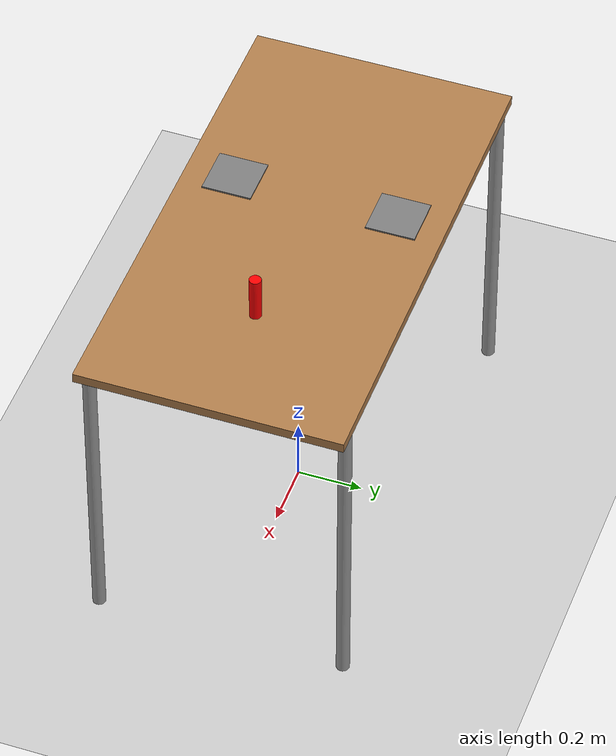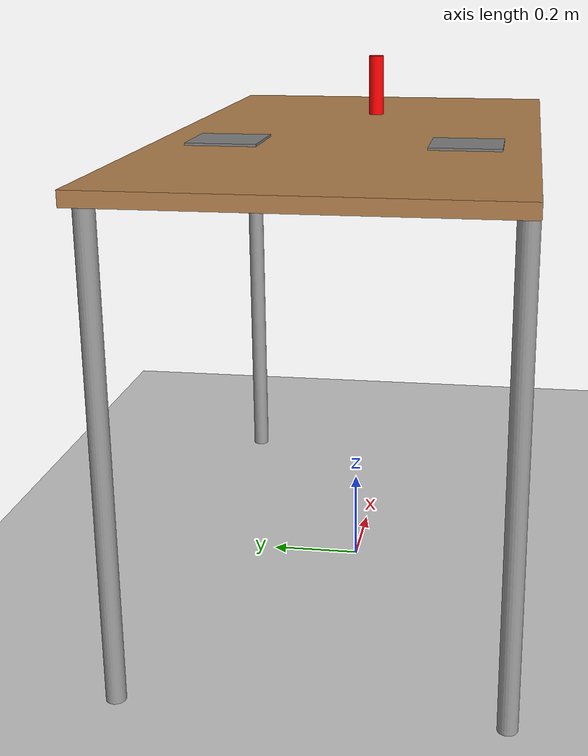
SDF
<?xml version="1.0" ?>
<sdf version="1.7">
  <world name="default">

    <gui fullscreen="0">
      <!-- Camera framed on this scene's workspace -->
      <plugin filename="MinimalScene" name="3D View">
        <gz-gui>
          <title>3D View</title>
          <property type="bool" key="showTitleBar">false</property>
          <property type="string" key="state">docked</property>
        </gz-gui>
        <engine>ogre2</engine>
        <scene>scene</scene>
        <ambient_light>0.4 0.4 0.4</ambient_light>
        <background_color>0.8 0.8 0.8</background_color>
        <camera_pose>-1.1 -1.1 1.7 0 0.36 0.68</camera_pose>
      </plugin>
      <plugin filename="EntityContextMenuPlugin" name="Entity context menu">
        <gz-gui>
          <property key="state" type="string">floating</property>
          <property key="width" type="double">5</property>
          <property key="height" type="double">5</property>
          <property key="showTitleBar" type="bool">false</property>
        </gz-gui>
      </plugin>
      <plugin filename="GzSceneManager" name="Scene Manager">
        <gz-gui>
          <property key="resizable" type="bool">false</property>
          <property key="width" type="double">5</property>
          <property key="height" type="double">5</property>
          <property key="state" type="string">floating</property>
          <property key="showTitleBar" type="bool">false</property>
        </gz-gui>
      </plugin>
      <plugin filename="InteractiveViewControl" name="Interactive view control">
        <gz-gui>
          <property key="resizable" type="bool">false</property>
          <property key="width" type="double">5</property>
          <property key="height" type="double">5</property>
          <property key="state" type="string">floating</property>
          <property key="showTitleBar" type="bool">false</property>
        </gz-gui>
      </plugin>
      <plugin filename="CameraTracking" name="Camera Tracking">
        <gz-gui>
          <property key="resizable" type="bool">false</property>
          <property key="width" type="double">5</property>
          <property key="height" type="double">5</property>
          <property key="state" type="string">floating</property>
          <property key="showTitleBar" type="bool">false</property>
        </gz-gui>
      </plugin>
      <plugin filename="MarkerManager" name="Marker manager">
        <gz-gui>
          <property key="resizable" type="bool">false</property>
          <property key="width" type="double">5</property>
          <property key="height" type="double">5</property>
          <property key="state" type="string">floating</property>
          <property key="showTitleBar" type="bool">false</property>
        </gz-gui>
      </plugin>
      <plugin filename="SelectEntities" name="Select Entities">
        <gz-gui>
          <property key="resizable" type="bool">false</property>
          <property key="width" type="double">5</property>
          <property key="height" type="double">5</property>
          <property key="state" type="string">floating</property>
          <property key="showTitleBar" type="bool">false</property>
        </gz-gui>
      </plugin>
      <plugin filename="Spawn" name="Spawn Entities">
        <gz-gui>
          <property key="resizable" type="bool">false</property>
          <property key="width" type="double">5</property>
          <property key="height" type="double">5</property>
          <property key="state" type="string">floating</property>
          <property key="showTitleBar" type="bool">false</property>
        </gz-gui>
      </plugin>
      <plugin filename="VisualizationCapabilities" name="Visualization Capabilities">
        <gz-gui>
          <property key="resizable" type="bool">false</property>
          <property key="width" type="double">5</property>
          <property key="height" type="double">5</property>
          <property key="state" type="string">floating</property>
          <property key="showTitleBar" type="bool">false</property>
        </gz-gui>
      </plugin>
      <plugin filename="WorldControl" name="World control">
        <gz-gui>
          <title>World control</title>
          <property type="bool" key="showTitleBar">false</property>
          <property type="bool" key="resizable">false</property>
          <property type="double" key="height">72</property>
          <property type="double" key="z">1</property>
          <property type="string" key="state">floating</property>
          <anchors target="3D View">
            <line own="left" target="left"/>
            <line own="bottom" target="bottom"/>
          </anchors>
        </gz-gui>
        <play_pause>true</play_pause>
        <step>true</step>
        <start_paused>true</start_paused>
        <use_event>true</use_event>
      </plugin>
      <plugin filename="WorldStats" name="World stats">
        <gz-gui>
          <title>World stats</title>
          <property type="bool" key="showTitleBar">false</property>
          <property type="bool" key="resizable">false</property>
          <property type="double" key="height">110</property>
          <property type="double" key="width">290</property>
          <property type="double" key="z">1</property>
          <property type="string" key="state">floating</property>
          <anchors target="3D View">
            <line own="right" target="right"/>
            <line own="bottom" target="bottom"/>
          </anchors>
        </gz-gui>
        <sim_time>true</sim_time>
        <real_time>true</real_time>
        <real_time_factor>true</real_time_factor>
        <iterations>true</iterations>
      </plugin>
      <plugin filename="EntityTree" name="Entity tree">
        <gz-gui>
          <property type="bool" key="showTitleBar">false</property>
          <property type="string" key="state">docked</property>
        </gz-gui>
      </plugin>
    </gui>
    <physics name="default_physics" type="ode">
      <max_step_size>0.001</max_step_size>
      <real_time_factor>1</real_time_factor>
      <gravity>0.0 0.0 -9.8</gravity>
    </physics>

    <plugin filename="gz-sim-physics-system" name="gz::sim::systems::Physics"/>
    <plugin filename="gz-sim-user-commands-system" name="gz::sim::systems::UserCommands"/>
    <plugin filename="gz-sim-scene-broadcaster-system" name="gz::sim::systems::SceneBroadcaster"/>
    <plugin filename="gz-sim-sensors-system" name="gz::sim::systems::Sensors">
      <render_engine>ogre2</render_engine>
    </plugin>
    <plugin filename="gz-sim-contact-system" name="gz::sim::systems::Contact"/>

    <include>
      <uri>https://fuel.gazebosim.org/1.0/OpenRobotics/models/Sun</uri>
    </include>

    <include>
      <uri>https://fuel.gazebosim.org/1.0/OpenRobotics/models/Ground Plane</uri>
    </include>

    <include>
      <name>mount_table</name>
      <uri>model://mount_table</uri>
      <pose>0 0 0 0 0 0</pose>
    </include>

    <include>
      <uri>model://red_cylinder</uri>
      <name>red_cylinder</name>
      <!-- z = table_height (1.015) + half of model's length (0.14/2=0.07) so
           it still rests flush on the ground after the height bump. -->
      <pose>0.36 0.0 1.085 0 0 0</pose>
    </include>

    <!-- YCB objects for richer scene — z raised the same way, x nudged
         further from the arm base for the same reason as red_cylinder above. -->
    <!-- Kept clear of red_cylinder (0.38, 0.18) so cylinder circle-fitting
         isn't swallowed by the mustard cluster / occluded from the head cam. -->

    <!-- Bin / drop zone — sit on the raised ground (mount_table's floor
         level = table_height), not the pick table; outside its footprint. -->
    <model name="bin_left">
      <static>true</static>
      <pose>-0.15 0.25 1.015 0 0 0</pose>
      <link name="link">
        <visual name="visual">
          <geometry><box><size>0.15 0.15 0.01</size></box></geometry>
          <material><ambient>0.5 0.5 0.5 1</ambient></material>
        </visual>
        <collision name="collision">
          <geometry><box><size>0.15 0.15 0.01</size></box></geometry>
        </collision>
      </link>
    </model>

    <model name="bin_right">
      <static>true</static>
      <pose>-0.15 -0.25 1.015 0 0 0</pose>
      <link name="link">
        <visual name="visual">
          <geometry><box><size>0.15 0.15 0.01</size></box></geometry>
          <material><ambient>0.5 0.5 0.5 1</ambient></material>
        </visual>
        <collision name="collision">
          <geometry><box><size>0.15 0.15 0.01</size></box></geometry>
        </collision>
      </link>
    </model>

    <!-- Matches the GUI's MinimalScene ambient_light/background_color above -->
    <scene>
      <ambient>0.4 0.4 0.4 1</ambient>
      <background>0.8 0.8 0.8 1</background>
      <shadows>true</shadows>
      <grid>false</grid>
    </scene>
  </world>
</sdf>

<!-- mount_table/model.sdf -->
<sdf version="1.5">
    <model name="mount_table">
        <static>true</static>
        <link name="link">
            <collision name="surface">
                <pose>0 0 1.0 0 0 0</pose>
                <geometry>
                    <box>
                        <size>1.5 0.8 0.03</size>
                    </box>
                </geometry>
                <surface>
                    <friction>
                        <ode>
                            <mu>0.6</mu>
                            <mu2>0.6</mu2>
                        </ode>
                    </friction>
                </surface>
            </collision>
            <visual name="visual1">
                <pose>0 0 1.0 0 0 0</pose>
                <geometry>
                    <box>
                        <size>1.5 0.8 0.03</size>
                    </box>
                </geometry>
                <material>
                    <diffuse>1.0 1.0 1.0</diffuse>
                    <script>
                        <uri>file://media/materials/scripts/gazebo.material</uri>
                        <name>Gazebo/Wood</name>
                    </script>
                    <!-- PBR for Ignition, material scripts for gazebo classic-->
                    <pbr>
                        <metal>
                            <albedo_map>model://mount_table/Table_Diffuse.jpg</albedo_map>
                        </metal>
                    </pbr>
                </material>
            </visual>
            <collision name="front_left_leg">
                <pose>0.68 0.38 0.5 0 0 0</pose>
                <geometry>
                    <cylinder>
                        <radius>0.02</radius>
                        <length>1.0</length>
                    </cylinder>
                </geometry>
            </collision>
            <visual name="front_left_leg">
                <pose>0.68 0.38 0.5 0 0 0</pose>
                <geometry>
                    <cylinder>
                        <radius>0.02</radius>
                        <length>1.0</length>
                    </cylinder>
                </geometry>
                <material>
                    <diffuse>0.5 0.5 0.5</diffuse>
                    <script>
                        <uri>file://media/materials/scripts/gazebo.material</uri>
                        <name>Gazebo/Grey</name>
                    </script>
                </material>
            </visual>
            <collision name="front_right_leg">
                <pose>0.68 -0.38 0.5 0 0 0</pose>
                <geometry>
                    <cylinder>
                        <radius>0.02</radius>
                        <length>1.0</length>
                    </cylinder>
                </geometry>
            </collision>
            <visual name="front_right_leg">
                <pose>0.68 -0.38 0.5 0 0 0</pose>
                <geometry>
                    <cylinder>
                        <radius>0.02</radius>
                        <length>1.0</length>
                    </cylinder>
                </geometry>
                <material>
                    <diffuse>0.5 0.5 0.5</diffuse>
                    <script>
                        <uri>file://media/materials/scripts/gazebo.material</uri>
                        <name>Gazebo/Grey</name>
                    </script>
                </material>
            </visual>
            <collision name="back_right_leg">
                <pose>-0.68 -0.38 0.5 0 0 0</pose>
                <geometry>
                    <cylinder>
                        <radius>0.02</radius>
                        <length>1.0</length>
                    </cylinder>
                </geometry>
            </collision>
            <visual name="back_right_leg">
                <pose>-0.68 -0.38 0.5 0 0 0</pose>
                <geometry>
                    <cylinder>
                        <radius>0.02</radius>
                        <length>1.0</length>
                    </cylinder>
                </geometry>
                <material>
                    <diffuse>0.5 0.5 0.5</diffuse>
                    <script>
                        <uri>file://media/materials/scripts/gazebo.material</uri>
                        <name>Gazebo/Grey</name>
                    </script>
                </material>
            </visual>
            <collision name="back_left_leg">
                <pose>-0.68 0.38 0.5 0 0 0</pose>
                <geometry>
                    <cylinder>
                        <radius>0.02</radius>
                        <length>1.0</length>
                    </cylinder>
                </geometry>
            </collision>
            <visual name="back_left_leg">
                <pose>-0.68 0.38 0.5 0 0 0</pose>
                <geometry>
                    <cylinder>
                        <radius>0.02</radius>
                        <length>1.0</length>
                    </cylinder>
                </geometry>
                <material>
                    <diffuse>0.5 0.5 0.5</diffuse>
                    <script>
                        <uri>file://media/materials/scripts/gazebo.material</uri>
                        <name>Gazebo/Grey</name>
                    </script>
                </material>
            </visual>
        </link>
    </model>
</sdf>

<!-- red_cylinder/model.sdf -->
<sdf version="1.6">
  <model name="red_cylinder">
    <static>false</static>
    <link name="link">
      <inertial>
        <mass>0.100</mass>
        <inertia>
          <ixx>0.00102893</ixx>
          <ixy>0</ixy>
          <ixz>0</ixz>
          <iyy>0.00102893</iyy>
          <iyz>0</iyz>
          <izz>0.0000162</izz>
        </inertia>
      </inertial>
      <collision name="collision">
        <geometry>
          <cylinder>
            <radius>0.018</radius>
            <length>0.14</length>
          </cylinder>
        </geometry>
        <surface>
          <friction>
            <ode>
              <mu>5.0</mu>
              <mu2>5.0</mu2>
              <fdir1>0 0 1</fdir1>
              <slip1>0.0001</slip1>
              <slip2>0.0001</slip2>
            </ode>
            <torsional>
              <coefficient>0.1</coefficient>
              <surface_radius>0.015</surface_radius>
              <use_patch_radius>true</use_patch_radius>
            </torsional>
          </friction>
          <contact>
            <ode>
              <kp>1e5</kp>
              <kd>10</kd>
              <max_vel>0.1</max_vel>
              <min_depth>0.001</min_depth>
              <soft_cfm>0.01</soft_cfm>
              <soft_erp>0.2</soft_erp>
            </ode>
          </contact>
          <bounce>
            <restitution_coefficient>0.2</restitution_coefficient>
            <threshold>0.01</threshold>
          </bounce>
        </surface>
      </collision>
      <visual name="visual">
        <geometry>
          <cylinder>
            <radius>0.018</radius>
            <length>0.14</length>
          </cylinder>
        </geometry>
        <material>
          <ambient>1.0 0.0 0.0 1</ambient>
          <diffuse>1.0 0.0 0.0 1</diffuse>
          <specular>0.5 0.5 0.5 1</specular>
          <emissive>0.1 0 0 1</emissive>
        </material>
      </visual>
    </link>
  </model>
</sdf>
